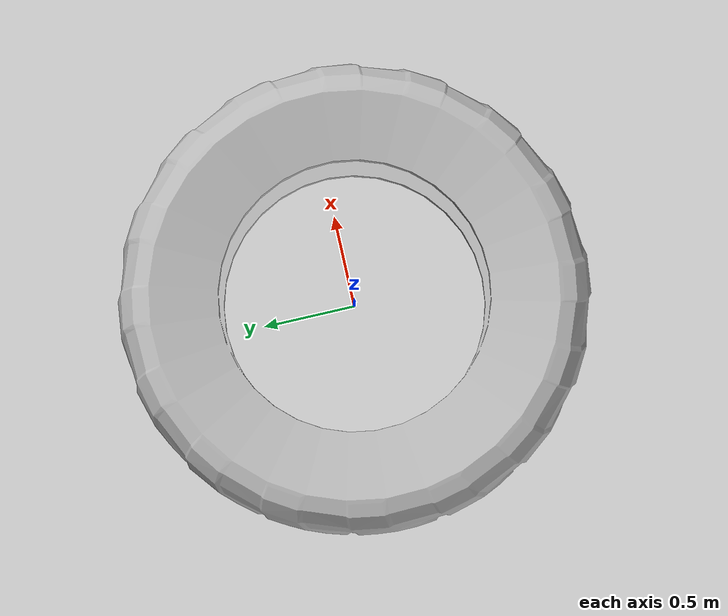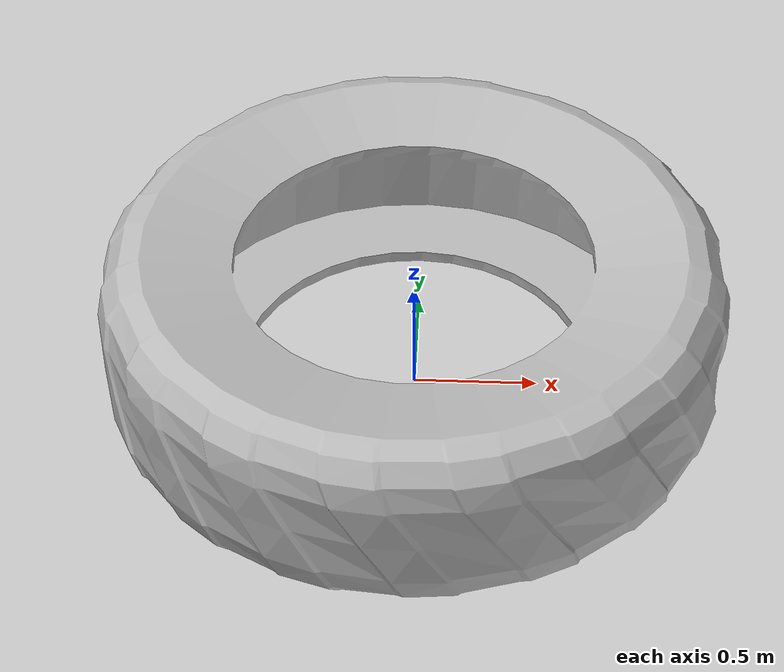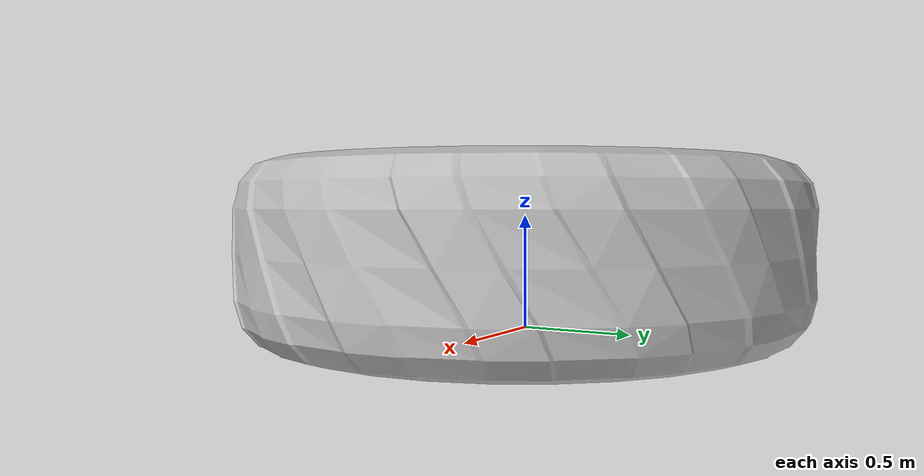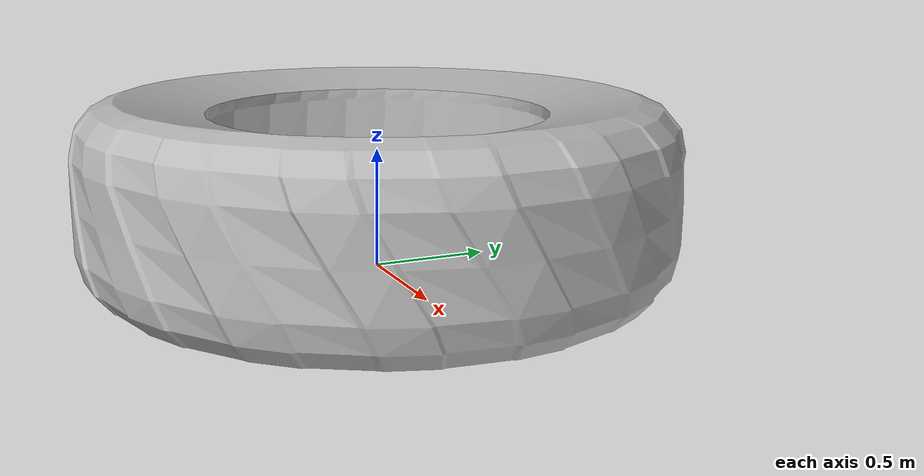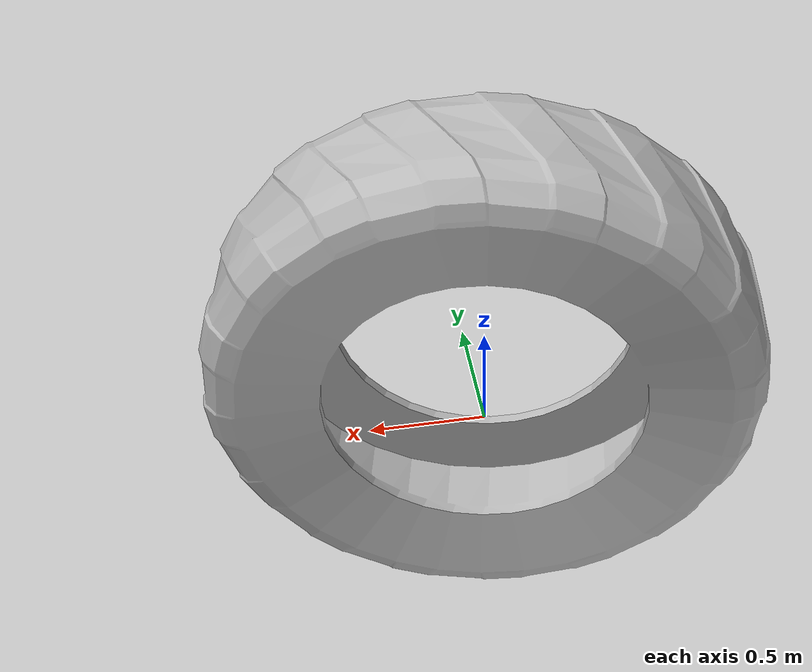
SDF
<sdf version="1.7">
  <model name="tractor_tyre">
    <static>true</static>
    <link name="tractor_tyre_link">
      <collision name="tractor_tyre_collision">
        <geometry>
          <mesh>
            <uri>model://tractor_tyre/tractor_tyre.dae</uri>
            <scale>1 1 1</scale>
          </mesh>
        </geometry>
      </collision>
      <visual name="tractor_tyre_visual">
        <geometry>
          <mesh>
            <uri>model://tractor_tyre/tractor_tyre.dae</uri>
            <scale>1 1 1</scale>
          </mesh>
        </geometry>
      </visual>
    </link>
  </model>
</sdf>
